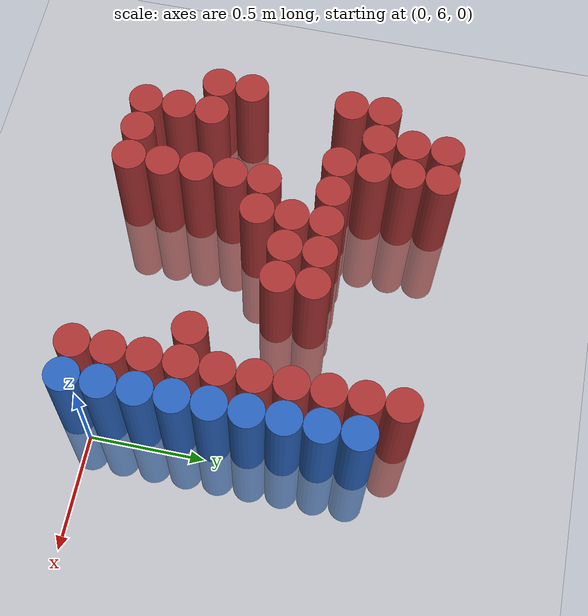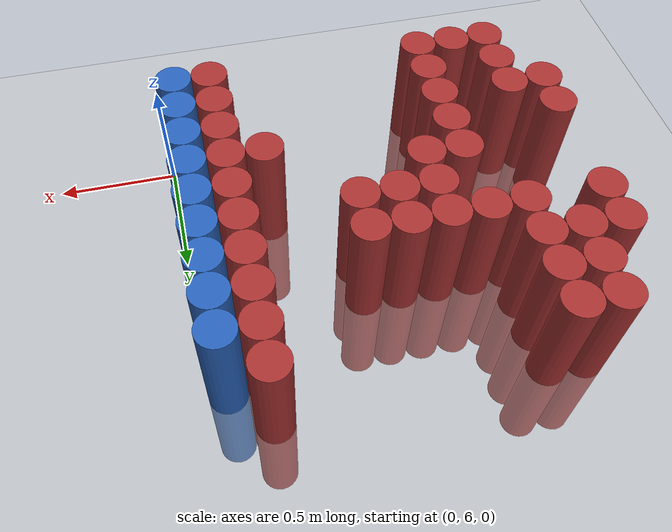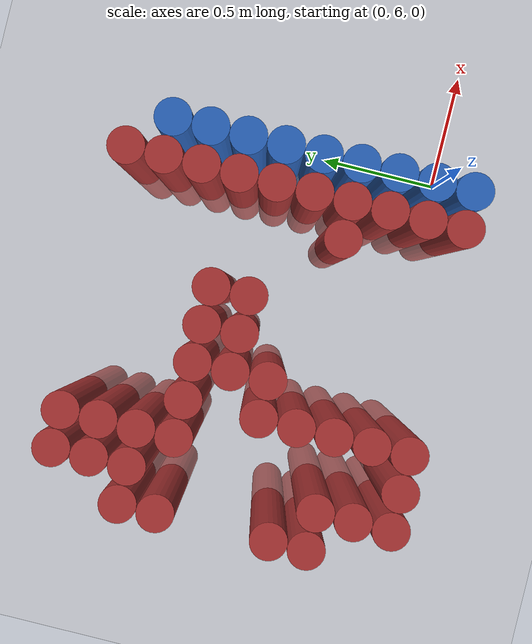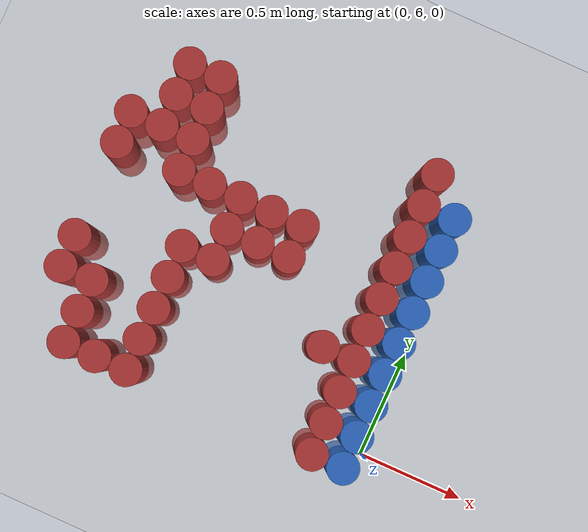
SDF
<sdf version="1.6">
 <world name="default">
  <model name="ground_plane">
   <static>1</static>
   <link name="link">
    <collision name="collision">
     <geometry><plane><normal>0 0 1</normal><size>100 100</size></plane></geometry>
     <surface><friction><ode><mu>100</mu><mu2>50</mu2></ode></friction></surface>
    </collision>
    <visual name="visual">
     <cast_shadows>0</cast_shadows>
     <geometry><plane><normal>0 0 1</normal><size>100 100</size></plane></geometry>
     <material>
      <script><uri>file://media/materials/scripts/gazebo.material</uri><name>Gazebo/Grey</name></script>
     </material>
    </visual>
   </link>
  </model>
  <model name="unit_cylinder_220">
   <static>1</static>
   <pose>-1.575000 6.225000 0.000000 0.000000 0.000000 0.000000</pose>
   <link name="link">
    <inertial>
     <mass>1</mass>
     <inertia><ixx>0.145833</ixx><ixy>0</ixy><ixz>0</ixz><iyy>0.145833</iyy><iyz>0</iyz><izz>0.125</izz></inertia>
    </inertial>
    <collision name="collision">
     <geometry><cylinder><radius>0.075000</radius><length>1</length></cylinder></geometry>
    </collision>
    <visual name="visual">
     <geometry><cylinder><radius>0.075000</radius><length>1</length></cylinder></geometry>
     <material>
      <ambient>0.648000 0.192000 0.192000 1</ambient>
      <diffuse>0.648000 0.192000 0.192000 1</diffuse>
     </material>
     <material>
      <script><name>Gazebo/Grey</name><uri>file://media/materials/scripts/gazebo.material</uri></script>
     </material>
    </visual>
   </link>
  </model>
  <model name="unit_cylinder_221">
   <static>1</static>
   <pose>-1.575000 6.375000 0.000000 0.000000 0.000000 0.000000</pose>
   <link name="link">
    <inertial>
     <mass>1</mass>
     <inertia><ixx>0.145833</ixx><ixy>0</ixy><ixz>0</ixz><iyy>0.145833</iyy><iyz>0</iyz><izz>0.125</izz></inertia>
    </inertial>
    <collision name="collision">
     <geometry><cylinder><radius>0.075000</radius><length>1</length></cylinder></geometry>
    </collision>
    <visual name="visual">
     <geometry><cylinder><radius>0.075000</radius><length>1</length></cylinder></geometry>
     <material>
      <ambient>0.648000 0.192000 0.192000 1</ambient>
      <diffuse>0.648000 0.192000 0.192000 1</diffuse>
     </material>
     <material>
      <script><name>Gazebo/Grey</name><uri>file://media/materials/scripts/gazebo.material</uri></script>
     </material>
    </visual>
   </link>
  </model>
  <model name="unit_cylinder_222">
   <static>1</static>
   <pose>-1.575000 6.825000 0.000000 0.000000 0.000000 0.000000</pose>
   <link name="link">
    <inertial>
     <mass>1</mass>
     <inertia><ixx>0.145833</ixx><ixy>0</ixy><ixz>0</ixz><iyy>0.145833</iyy><iyz>0</iyz><izz>0.125</izz></inertia>
    </inertial>
    <collision name="collision">
     <geometry><cylinder><radius>0.075000</radius><length>1</length></cylinder></geometry>
    </collision>
    <visual name="visual">
     <geometry><cylinder><radius>0.075000</radius><length>1</length></cylinder></geometry>
     <material>
      <ambient>0.648000 0.192000 0.192000 1</ambient>
      <diffuse>0.648000 0.192000 0.192000 1</diffuse>
     </material>
     <material>
      <script><name>Gazebo/Grey</name><uri>file://media/materials/scripts/gazebo.material</uri></script>
     </material>
    </visual>
   </link>
  </model>
  <model name="unit_cylinder_223">
   <static>1</static>
   <pose>-1.575000 6.975000 0.000000 0.000000 0.000000 0.000000</pose>
   <link name="link">
    <inertial>
     <mass>1</mass>
     <inertia><ixx>0.145833</ixx><ixy>0</ixy><ixz>0</ixz><iyy>0.145833</iyy><iyz>0</iyz><izz>0.125</izz></inertia>
    </inertial>
    <collision name="collision">
     <geometry><cylinder><radius>0.075000</radius><length>1</length></cylinder></geometry>
    </collision>
    <visual name="visual">
     <geometry><cylinder><radius>0.075000</radius><length>1</length></cylinder></geometry>
     <material>
      <ambient>0.648000 0.192000 0.192000 1</ambient>
      <diffuse>0.648000 0.192000 0.192000 1</diffuse>
     </material>
     <material>
      <script><name>Gazebo/Grey</name><uri>file://media/materials/scripts/gazebo.material</uri></script>
     </material>
    </visual>
   </link>
  </model>
  <model name="unit_cylinder_228">
   <static>1</static>
   <pose>-1.425000 5.925000 0.000000 0.000000 0.000000 0.000000</pose>
   <link name="link">
    <inertial>
     <mass>1</mass>
     <inertia><ixx>0.145833</ixx><ixy>0</ixy><ixz>0</ixz><iyy>0.145833</iyy><iyz>0</iyz><izz>0.125</izz></inertia>
    </inertial>
    <collision name="collision">
     <geometry><cylinder><radius>0.075000</radius><length>1</length></cylinder></geometry>
    </collision>
    <visual name="visual">
     <geometry><cylinder><radius>0.075000</radius><length>1</length></cylinder></geometry>
     <material>
      <ambient>0.648000 0.192000 0.192000 1</ambient>
      <diffuse>0.648000 0.192000 0.192000 1</diffuse>
     </material>
     <material>
      <script><name>Gazebo/Grey</name><uri>file://media/materials/scripts/gazebo.material</uri></script>
     </material>
    </visual>
   </link>
  </model>
  <model name="unit_cylinder_229">
   <static>1</static>
   <pose>-1.425000 6.075000 0.000000 0.000000 0.000000 0.000000</pose>
   <link name="link">
    <inertial>
     <mass>1</mass>
     <inertia><ixx>0.145833</ixx><ixy>0</ixy><ixz>0</ixz><iyy>0.145833</iyy><iyz>0</iyz><izz>0.125</izz></inertia>
    </inertial>
    <collision name="collision">
     <geometry><cylinder><radius>0.075000</radius><length>1</length></cylinder></geometry>
    </collision>
    <visual name="visual">
     <geometry><cylinder><radius>0.075000</radius><length>1</length></cylinder></geometry>
     <material>
      <ambient>0.648000 0.192000 0.192000 1</ambient>
      <diffuse>0.648000 0.192000 0.192000 1</diffuse>
     </material>
     <material>
      <script><name>Gazebo/Grey</name><uri>file://media/materials/scripts/gazebo.material</uri></script>
     </material>
    </visual>
   </link>
  </model>
  <model name="unit_cylinder_230">
   <static>1</static>
   <pose>-1.425000 6.225000 0.000000 0.000000 0.000000 0.000000</pose>
   <link name="link">
    <inertial>
     <mass>1</mass>
     <inertia><ixx>0.145833</ixx><ixy>0</ixy><ixz>0</ixz><iyy>0.145833</iyy><iyz>0</iyz><izz>0.125</izz></inertia>
    </inertial>
    <collision name="collision">
     <geometry><cylinder><radius>0.075000</radius><length>1</length></cylinder></geometry>
    </collision>
    <visual name="visual">
     <geometry><cylinder><radius>0.075000</radius><length>1</length></cylinder></geometry>
     <material>
      <ambient>0.648000 0.192000 0.192000 1</ambient>
      <diffuse>0.648000 0.192000 0.192000 1</diffuse>
     </material>
     <material>
      <script><name>Gazebo/Grey</name><uri>file://media/materials/scripts/gazebo.material</uri></script>
     </material>
    </visual>
   </link>
  </model>
  <model name="unit_cylinder_231">
   <static>1</static>
   <pose>-1.425000 6.975000 0.000000 0.000000 0.000000 0.000000</pose>
   <link name="link">
    <inertial>
     <mass>1</mass>
     <inertia><ixx>0.145833</ixx><ixy>0</ixy><ixz>0</ixz><iyy>0.145833</iyy><iyz>0</iyz><izz>0.125</izz></inertia>
    </inertial>
    <collision name="collision">
     <geometry><cylinder><radius>0.075000</radius><length>1</length></cylinder></geometry>
    </collision>
    <visual name="visual">
     <geometry><cylinder><radius>0.075000</radius><length>1</length></cylinder></geometry>
     <material>
      <ambient>0.648000 0.192000 0.192000 1</ambient>
      <diffuse>0.648000 0.192000 0.192000 1</diffuse>
     </material>
     <material>
      <script><name>Gazebo/Grey</name><uri>file://media/materials/scripts/gazebo.material</uri></script>
     </material>
    </visual>
   </link>
  </model>
  <model name="unit_cylinder_232">
   <static>1</static>
   <pose>-1.425000 7.125000 0.000000 0.000000 0.000000 0.000000</pose>
   <link name="link">
    <inertial>
     <mass>1</mass>
     <inertia><ixx>0.145833</ixx><ixy>0</ixy><ixz>0</ixz><iyy>0.145833</iyy><iyz>0</iyz><izz>0.125</izz></inertia>
    </inertial>
    <collision name="collision">
     <geometry><cylinder><radius>0.075000</radius><length>1</length></cylinder></geometry>
    </collision>
    <visual name="visual">
     <geometry><cylinder><radius>0.075000</radius><length>1</length></cylinder></geometry>
     <material>
      <ambient>0.648000 0.192000 0.192000 1</ambient>
      <diffuse>0.648000 0.192000 0.192000 1</diffuse>
     </material>
     <material>
      <script><name>Gazebo/Grey</name><uri>file://media/materials/scripts/gazebo.material</uri></script>
     </material>
    </visual>
   </link>
  </model>
  <model name="unit_cylinder_233">
   <static>1</static>
   <pose>-1.425000 7.275000 0.000000 0.000000 0.000000 0.000000</pose>
   <link name="link">
    <inertial>
     <mass>1</mass>
     <inertia><ixx>0.145833</ixx><ixy>0</ixy><ixz>0</ixz><iyy>0.145833</iyy><iyz>0</iyz><izz>0.125</izz></inertia>
    </inertial>
    <collision name="collision">
     <geometry><cylinder><radius>0.075000</radius><length>1</length></cylinder></geometry>
    </collision>
    <visual name="visual">
     <geometry><cylinder><radius>0.075000</radius><length>1</length></cylinder></geometry>
     <material>
      <ambient>0.648000 0.192000 0.192000 1</ambient>
      <diffuse>0.648000 0.192000 0.192000 1</diffuse>
     </material>
     <material>
      <script><name>Gazebo/Grey</name><uri>file://media/materials/scripts/gazebo.material</uri></script>
     </material>
    </visual>
   </link>
  </model>
  <model name="unit_cylinder_237">
   <static>1</static>
   <pose>-1.275000 5.925000 0.000000 0.000000 0.000000 0.000000</pose>
   <link name="link">
    <inertial>
     <mass>1</mass>
     <inertia><ixx>0.145833</ixx><ixy>0</ixy><ixz>0</ixz><iyy>0.145833</iyy><iyz>0</iyz><izz>0.125</izz></inertia>
    </inertial>
    <collision name="collision">
     <geometry><cylinder><radius>0.075000</radius><length>1</length></cylinder></geometry>
    </collision>
    <visual name="visual">
     <geometry><cylinder><radius>0.075000</radius><length>1</length></cylinder></geometry>
     <material>
      <ambient>0.648000 0.192000 0.192000 1</ambient>
      <diffuse>0.648000 0.192000 0.192000 1</diffuse>
     </material>
     <material>
      <script><name>Gazebo/Grey</name><uri>file://media/materials/scripts/gazebo.material</uri></script>
     </material>
    </visual>
   </link>
  </model>
  <model name="unit_cylinder_238">
   <static>1</static>
   <pose>-1.275000 6.825000 0.000000 0.000000 0.000000 0.000000</pose>
   <link name="link">
    <inertial>
     <mass>1</mass>
     <inertia><ixx>0.145833</ixx><ixy>0</ixy><ixz>0</ixz><iyy>0.145833</iyy><iyz>0</iyz><izz>0.125</izz></inertia>
    </inertial>
    <collision name="collision">
     <geometry><cylinder><radius>0.075000</radius><length>1</length></cylinder></geometry>
    </collision>
    <visual name="visual">
     <geometry><cylinder><radius>0.075000</radius><length>1</length></cylinder></geometry>
     <material>
      <ambient>0.648000 0.192000 0.192000 1</ambient>
      <diffuse>0.648000 0.192000 0.192000 1</diffuse>
     </material>
     <material>
      <script><name>Gazebo/Grey</name><uri>file://media/materials/scripts/gazebo.material</uri></script>
     </material>
    </visual>
   </link>
  </model>
  <model name="unit_cylinder_239">
   <static>1</static>
   <pose>-1.275000 6.975000 0.000000 0.000000 0.000000 0.000000</pose>
   <link name="link">
    <inertial>
     <mass>1</mass>
     <inertia><ixx>0.145833</ixx><ixy>0</ixy><ixz>0</ixz><iyy>0.145833</iyy><iyz>0</iyz><izz>0.125</izz></inertia>
    </inertial>
    <collision name="collision">
     <geometry><cylinder><radius>0.075000</radius><length>1</length></cylinder></geometry>
    </collision>
    <visual name="visual">
     <geometry><cylinder><radius>0.075000</radius><length>1</length></cylinder></geometry>
     <material>
      <ambient>0.648000 0.192000 0.192000 1</ambient>
      <diffuse>0.648000 0.192000 0.192000 1</diffuse>
     </material>
     <material>
      <script><name>Gazebo/Grey</name><uri>file://media/materials/scripts/gazebo.material</uri></script>
     </material>
    </visual>
   </link>
  </model>
  <model name="unit_cylinder_240">
   <static>1</static>
   <pose>-1.275000 7.125000 0.000000 0.000000 0.000000 0.000000</pose>
   <link name="link">
    <inertial>
     <mass>1</mass>
     <inertia><ixx>0.145833</ixx><ixy>0</ixy><ixz>0</ixz><iyy>0.145833</iyy><iyz>0</iyz><izz>0.125</izz></inertia>
    </inertial>
    <collision name="collision">
     <geometry><cylinder><radius>0.075000</radius><length>1</length></cylinder></geometry>
    </collision>
    <visual name="visual">
     <geometry><cylinder><radius>0.075000</radius><length>1</length></cylinder></geometry>
     <material>
      <ambient>0.648000 0.192000 0.192000 1</ambient>
      <diffuse>0.648000 0.192000 0.192000 1</diffuse>
     </material>
     <material>
      <script><name>Gazebo/Grey</name><uri>file://media/materials/scripts/gazebo.material</uri></script>
     </material>
    </visual>
   </link>
  </model>
  <model name="unit_cylinder_241">
   <static>1</static>
   <pose>-1.275000 7.275000 0.000000 0.000000 0.000000 0.000000</pose>
   <link name="link">
    <inertial>
     <mass>1</mass>
     <inertia><ixx>0.145833</ixx><ixy>0</ixy><ixz>0</ixz><iyy>0.145833</iyy><iyz>0</iyz><izz>0.125</izz></inertia>
    </inertial>
    <collision name="collision">
     <geometry><cylinder><radius>0.075000</radius><length>1</length></cylinder></geometry>
    </collision>
    <visual name="visual">
     <geometry><cylinder><radius>0.075000</radius><length>1</length></cylinder></geometry>
     <material>
      <ambient>0.648000 0.192000 0.192000 1</ambient>
      <diffuse>0.648000 0.192000 0.192000 1</diffuse>
     </material>
     <material>
      <script><name>Gazebo/Grey</name><uri>file://media/materials/scripts/gazebo.material</uri></script>
     </material>
    </visual>
   </link>
  </model>
  <model name="unit_cylinder_244">
   <static>1</static>
   <pose>-1.125000 5.925000 0.000000 0.000000 0.000000 0.000000</pose>
   <link name="link">
    <inertial>
     <mass>1</mass>
     <inertia><ixx>0.145833</ixx><ixy>0</ixy><ixz>0</ixz><iyy>0.145833</iyy><iyz>0</iyz><izz>0.125</izz></inertia>
    </inertial>
    <collision name="collision">
     <geometry><cylinder><radius>0.075000</radius><length>1</length></cylinder></geometry>
    </collision>
    <visual name="visual">
     <geometry><cylinder><radius>0.075000</radius><length>1</length></cylinder></geometry>
     <material>
      <ambient>0.648000 0.192000 0.192000 1</ambient>
      <diffuse>0.648000 0.192000 0.192000 1</diffuse>
     </material>
     <material>
      <script><name>Gazebo/Grey</name><uri>file://media/materials/scripts/gazebo.material</uri></script>
     </material>
    </visual>
   </link>
  </model>
  <model name="unit_cylinder_245">
   <static>1</static>
   <pose>-1.125000 6.075000 0.000000 0.000000 0.000000 0.000000</pose>
   <link name="link">
    <inertial>
     <mass>1</mass>
     <inertia><ixx>0.145833</ixx><ixy>0</ixy><ixz>0</ixz><iyy>0.145833</iyy><iyz>0</iyz><izz>0.125</izz></inertia>
    </inertial>
    <collision name="collision">
     <geometry><cylinder><radius>0.075000</radius><length>1</length></cylinder></geometry>
    </collision>
    <visual name="visual">
     <geometry><cylinder><radius>0.075000</radius><length>1</length></cylinder></geometry>
     <material>
      <ambient>0.648000 0.192000 0.192000 1</ambient>
      <diffuse>0.648000 0.192000 0.192000 1</diffuse>
     </material>
     <material>
      <script><name>Gazebo/Grey</name><uri>file://media/materials/scripts/gazebo.material</uri></script>
     </material>
    </visual>
   </link>
  </model>
  <model name="unit_cylinder_246">
   <static>1</static>
   <pose>-1.125000 6.225000 0.000000 0.000000 0.000000 0.000000</pose>
   <link name="link">
    <inertial>
     <mass>1</mass>
     <inertia><ixx>0.145833</ixx><ixy>0</ixy><ixz>0</ixz><iyy>0.145833</iyy><iyz>0</iyz><izz>0.125</izz></inertia>
    </inertial>
    <collision name="collision">
     <geometry><cylinder><radius>0.075000</radius><length>1</length></cylinder></geometry>
    </collision>
    <visual name="visual">
     <geometry><cylinder><radius>0.075000</radius><length>1</length></cylinder></geometry>
     <material>
      <ambient>0.648000 0.192000 0.192000 1</ambient>
      <diffuse>0.648000 0.192000 0.192000 1</diffuse>
     </material>
     <material>
      <script><name>Gazebo/Grey</name><uri>file://media/materials/scripts/gazebo.material</uri></script>
     </material>
    </visual>
   </link>
  </model>
  <model name="unit_cylinder_247">
   <static>1</static>
   <pose>-1.125000 6.375000 0.000000 0.000000 0.000000 0.000000</pose>
   <link name="link">
    <inertial>
     <mass>1</mass>
     <inertia><ixx>0.145833</ixx><ixy>0</ixy><ixz>0</ixz><iyy>0.145833</iyy><iyz>0</iyz><izz>0.125</izz></inertia>
    </inertial>
    <collision name="collision">
     <geometry><cylinder><radius>0.075000</radius><length>1</length></cylinder></geometry>
    </collision>
    <visual name="visual">
     <geometry><cylinder><radius>0.075000</radius><length>1</length></cylinder></geometry>
     <material>
      <ambient>0.648000 0.192000 0.192000 1</ambient>
      <diffuse>0.648000 0.192000 0.192000 1</diffuse>
     </material>
     <material>
      <script><name>Gazebo/Grey</name><uri>file://media/materials/scripts/gazebo.material</uri></script>
     </material>
    </visual>
   </link>
  </model>
  <model name="unit_cylinder_248">
   <static>1</static>
   <pose>-1.125000 6.525000 0.000000 0.000000 0.000000 0.000000</pose>
   <link name="link">
    <inertial>
     <mass>1</mass>
     <inertia><ixx>0.145833</ixx><ixy>0</ixy><ixz>0</ixz><iyy>0.145833</iyy><iyz>0</iyz><izz>0.125</izz></inertia>
    </inertial>
    <collision name="collision">
     <geometry><cylinder><radius>0.075000</radius><length>1</length></cylinder></geometry>
    </collision>
    <visual name="visual">
     <geometry><cylinder><radius>0.075000</radius><length>1</length></cylinder></geometry>
     <material>
      <ambient>0.648000 0.192000 0.192000 1</ambient>
      <diffuse>0.648000 0.192000 0.192000 1</diffuse>
     </material>
     <material>
      <script><name>Gazebo/Grey</name><uri>file://media/materials/scripts/gazebo.material</uri></script>
     </material>
    </visual>
   </link>
  </model>
  <model name="unit_cylinder_249">
   <static>1</static>
   <pose>-1.125000 6.825000 0.000000 0.000000 0.000000 0.000000</pose>
   <link name="link">
    <inertial>
     <mass>1</mass>
     <inertia><ixx>0.145833</ixx><ixy>0</ixy><ixz>0</ixz><iyy>0.145833</iyy><iyz>0</iyz><izz>0.125</izz></inertia>
    </inertial>
    <collision name="collision">
     <geometry><cylinder><radius>0.075000</radius><length>1</length></cylinder></geometry>
    </collision>
    <visual name="visual">
     <geometry><cylinder><radius>0.075000</radius><length>1</length></cylinder></geometry>
     <material>
      <ambient>0.648000 0.192000 0.192000 1</ambient>
      <diffuse>0.648000 0.192000 0.192000 1</diffuse>
     </material>
     <material>
      <script><name>Gazebo/Grey</name><uri>file://media/materials/scripts/gazebo.material</uri></script>
     </material>
    </visual>
   </link>
  </model>
  <model name="unit_cylinder_254">
   <static>1</static>
   <pose>-0.975000 6.525000 0.000000 0.000000 0.000000 0.000000</pose>
   <link name="link">
    <inertial>
     <mass>1</mass>
     <inertia><ixx>0.145833</ixx><ixy>0</ixy><ixz>0</ixz><iyy>0.145833</iyy><iyz>0</iyz><izz>0.125</izz></inertia>
    </inertial>
    <collision name="collision">
     <geometry><cylinder><radius>0.075000</radius><length>1</length></cylinder></geometry>
    </collision>
    <visual name="visual">
     <geometry><cylinder><radius>0.075000</radius><length>1</length></cylinder></geometry>
     <material>
      <ambient>0.648000 0.192000 0.192000 1</ambient>
      <diffuse>0.648000 0.192000 0.192000 1</diffuse>
     </material>
     <material>
      <script><name>Gazebo/Grey</name><uri>file://media/materials/scripts/gazebo.material</uri></script>
     </material>
    </visual>
   </link>
  </model>
  <model name="unit_cylinder_255">
   <static>1</static>
   <pose>-0.975000 6.675000 0.000000 0.000000 0.000000 0.000000</pose>
   <link name="link">
    <inertial>
     <mass>1</mass>
     <inertia><ixx>0.145833</ixx><ixy>0</ixy><ixz>0</ixz><iyy>0.145833</iyy><iyz>0</iyz><izz>0.125</izz></inertia>
    </inertial>
    <collision name="collision">
     <geometry><cylinder><radius>0.075000</radius><length>1</length></cylinder></geometry>
    </collision>
    <visual name="visual">
     <geometry><cylinder><radius>0.075000</radius><length>1</length></cylinder></geometry>
     <material>
      <ambient>0.648000 0.192000 0.192000 1</ambient>
      <diffuse>0.648000 0.192000 0.192000 1</diffuse>
     </material>
     <material>
      <script><name>Gazebo/Grey</name><uri>file://media/materials/scripts/gazebo.material</uri></script>
     </material>
    </visual>
   </link>
  </model>
  <model name="unit_cylinder_256">
   <static>1</static>
   <pose>-0.975000 6.825000 0.000000 0.000000 0.000000 0.000000</pose>
   <link name="link">
    <inertial>
     <mass>1</mass>
     <inertia><ixx>0.145833</ixx><ixy>0</ixy><ixz>0</ixz><iyy>0.145833</iyy><iyz>0</iyz><izz>0.125</izz></inertia>
    </inertial>
    <collision name="collision">
     <geometry><cylinder><radius>0.075000</radius><length>1</length></cylinder></geometry>
    </collision>
    <visual name="visual">
     <geometry><cylinder><radius>0.075000</radius><length>1</length></cylinder></geometry>
     <material>
      <ambient>0.648000 0.192000 0.192000 1</ambient>
      <diffuse>0.648000 0.192000 0.192000 1</diffuse>
     </material>
     <material>
      <script><name>Gazebo/Grey</name><uri>file://media/materials/scripts/gazebo.material</uri></script>
     </material>
    </visual>
   </link>
  </model>
  <model name="unit_cylinder_262">
   <static>1</static>
   <pose>-0.825000 6.675000 0.000000 0.000000 0.000000 0.000000</pose>
   <link name="link">
    <inertial>
     <mass>1</mass>
     <inertia><ixx>0.145833</ixx><ixy>0</ixy><ixz>0</ixz><iyy>0.145833</iyy><iyz>0</iyz><izz>0.125</izz></inertia>
    </inertial>
    <collision name="collision">
     <geometry><cylinder><radius>0.075000</radius><length>1</length></cylinder></geometry>
    </collision>
    <visual name="visual">
     <geometry><cylinder><radius>0.075000</radius><length>1</length></cylinder></geometry>
     <material>
      <ambient>0.648000 0.192000 0.192000 1</ambient>
      <diffuse>0.648000 0.192000 0.192000 1</diffuse>
     </material>
     <material>
      <script><name>Gazebo/Grey</name><uri>file://media/materials/scripts/gazebo.material</uri></script>
     </material>
    </visual>
   </link>
  </model>
  <model name="unit_cylinder_263">
   <static>1</static>
   <pose>-0.825000 6.825000 0.000000 0.000000 0.000000 0.000000</pose>
   <link name="link">
    <inertial>
     <mass>1</mass>
     <inertia><ixx>0.145833</ixx><ixy>0</ixy><ixz>0</ixz><iyy>0.145833</iyy><iyz>0</iyz><izz>0.125</izz></inertia>
    </inertial>
    <collision name="collision">
     <geometry><cylinder><radius>0.075000</radius><length>1</length></cylinder></geometry>
    </collision>
    <visual name="visual">
     <geometry><cylinder><radius>0.075000</radius><length>1</length></cylinder></geometry>
     <material>
      <ambient>0.648000 0.192000 0.192000 1</ambient>
      <diffuse>0.648000 0.192000 0.192000 1</diffuse>
     </material>
     <material>
      <script><name>Gazebo/Grey</name><uri>file://media/materials/scripts/gazebo.material</uri></script>
     </material>
    </visual>
   </link>
  </model>
  <model name="unit_cylinder_266">
   <static>1</static>
   <pose>-0.675000 6.675000 0.000000 0.000000 0.000000 0.000000</pose>
   <link name="link">
    <inertial>
     <mass>1</mass>
     <inertia><ixx>0.145833</ixx><ixy>0</ixy><ixz>0</ixz><iyy>0.145833</iyy><iyz>0</iyz><izz>0.125</izz></inertia>
    </inertial>
    <collision name="collision">
     <geometry><cylinder><radius>0.075000</radius><length>1</length></cylinder></geometry>
    </collision>
    <visual name="visual">
     <geometry><cylinder><radius>0.075000</radius><length>1</length></cylinder></geometry>
     <material>
      <ambient>0.648000 0.192000 0.192000 1</ambient>
      <diffuse>0.648000 0.192000 0.192000 1</diffuse>
     </material>
     <material>
      <script><name>Gazebo/Grey</name><uri>file://media/materials/scripts/gazebo.material</uri></script>
     </material>
    </visual>
   </link>
  </model>
  <model name="unit_cylinder_267">
   <static>1</static>
   <pose>-0.675000 6.825000 0.000000 0.000000 0.000000 0.000000</pose>
   <link name="link">
    <inertial>
     <mass>1</mass>
     <inertia><ixx>0.145833</ixx><ixy>0</ixy><ixz>0</ixz><iyy>0.145833</iyy><iyz>0</iyz><izz>0.125</izz></inertia>
    </inertial>
    <collision name="collision">
     <geometry><cylinder><radius>0.075000</radius><length>1</length></cylinder></geometry>
    </collision>
    <visual name="visual">
     <geometry><cylinder><radius>0.075000</radius><length>1</length></cylinder></geometry>
     <material>
      <ambient>0.648000 0.192000 0.192000 1</ambient>
      <diffuse>0.648000 0.192000 0.192000 1</diffuse>
     </material>
     <material>
      <script><name>Gazebo/Grey</name><uri>file://media/materials/scripts/gazebo.material</uri></script>
     </material>
    </visual>
   </link>
  </model>
  <model name="unit_cylinder_278">
   <static>1</static>
   <pose>-0.375000 6.375000 0.000000 0.000000 0.000000 0.000000</pose>
   <link name="link">
    <inertial>
     <mass>1</mass>
     <inertia><ixx>0.145833</ixx><ixy>0</ixy><ixz>0</ixz><iyy>0.145833</iyy><iyz>0</iyz><izz>0.125</izz></inertia>
    </inertial>
    <collision name="collision">
     <geometry><cylinder><radius>0.075000</radius><length>1</length></cylinder></geometry>
    </collision>
    <visual name="visual">
     <geometry><cylinder><radius>0.075000</radius><length>1</length></cylinder></geometry>
     <material>
      <ambient>0.648000 0.192000 0.192000 1</ambient>
      <diffuse>0.648000 0.192000 0.192000 1</diffuse>
     </material>
     <material>
      <script><name>Gazebo/Grey</name><uri>file://media/materials/scripts/gazebo.material</uri></script>
     </material>
    </visual>
   </link>
  </model>
  <model name="unit_cylinder_287">
   <static>1</static>
   <pose>-0.225000 5.925000 0.000000 0.000000 0.000000 0.000000</pose>
   <link name="link">
    <inertial>
     <mass>1</mass>
     <inertia><ixx>0.145833</ixx><ixy>0</ixy><ixz>0</ixz><iyy>0.145833</iyy><iyz>0</iyz><izz>0.125</izz></inertia>
    </inertial>
    <collision name="collision">
     <geometry><cylinder><radius>0.075000</radius><length>1</length></cylinder></geometry>
    </collision>
    <visual name="visual">
     <geometry><cylinder><radius>0.075000</radius><length>1</length></cylinder></geometry>
     <material>
      <ambient>0.648000 0.192000 0.192000 1</ambient>
      <diffuse>0.648000 0.192000 0.192000 1</diffuse>
     </material>
     <material>
      <script><name>Gazebo/Grey</name><uri>file://media/materials/scripts/gazebo.material</uri></script>
     </material>
    </visual>
   </link>
  </model>
  <model name="unit_cylinder_288">
   <static>1</static>
   <pose>-0.225000 6.075000 0.000000 0.000000 0.000000 0.000000</pose>
   <link name="link">
    <inertial>
     <mass>1</mass>
     <inertia><ixx>0.145833</ixx><ixy>0</ixy><ixz>0</ixz><iyy>0.145833</iyy><iyz>0</iyz><izz>0.125</izz></inertia>
    </inertial>
    <collision name="collision">
     <geometry><cylinder><radius>0.075000</radius><length>1</length></cylinder></geometry>
    </collision>
    <visual name="visual">
     <geometry><cylinder><radius>0.075000</radius><length>1</length></cylinder></geometry>
     <material>
      <ambient>0.648000 0.192000 0.192000 1</ambient>
      <diffuse>0.648000 0.192000 0.192000 1</diffuse>
     </material>
     <material>
      <script><name>Gazebo/Grey</name><uri>file://media/materials/scripts/gazebo.material</uri></script>
     </material>
    </visual>
   </link>
  </model>
  <model name="unit_cylinder_289">
   <static>1</static>
   <pose>-0.225000 6.225000 0.000000 0.000000 0.000000 0.000000</pose>
   <link name="link">
    <inertial>
     <mass>1</mass>
     <inertia><ixx>0.145833</ixx><ixy>0</ixy><ixz>0</ixz><iyy>0.145833</iyy><iyz>0</iyz><izz>0.125</izz></inertia>
    </inertial>
    <collision name="collision">
     <geometry><cylinder><radius>0.075000</radius><length>1</length></cylinder></geometry>
    </collision>
    <visual name="visual">
     <geometry><cylinder><radius>0.075000</radius><length>1</length></cylinder></geometry>
     <material>
      <ambient>0.648000 0.192000 0.192000 1</ambient>
      <diffuse>0.648000 0.192000 0.192000 1</diffuse>
     </material>
     <material>
      <script><name>Gazebo/Grey</name><uri>file://media/materials/scripts/gazebo.material</uri></script>
     </material>
    </visual>
   </link>
  </model>
  <model name="unit_cylinder_290">
   <static>1</static>
   <pose>-0.225000 6.375000 0.000000 0.000000 0.000000 0.000000</pose>
   <link name="link">
    <inertial>
     <mass>1</mass>
     <inertia><ixx>0.145833</ixx><ixy>0</ixy><ixz>0</ixz><iyy>0.145833</iyy><iyz>0</iyz><izz>0.125</izz></inertia>
    </inertial>
    <collision name="collision">
     <geometry><cylinder><radius>0.075000</radius><length>1</length></cylinder></geometry>
    </collision>
    <visual name="visual">
     <geometry><cylinder><radius>0.075000</radius><length>1</length></cylinder></geometry>
     <material>
      <ambient>0.648000 0.192000 0.192000 1</ambient>
      <diffuse>0.648000 0.192000 0.192000 1</diffuse>
     </material>
     <material>
      <script><name>Gazebo/Grey</name><uri>file://media/materials/scripts/gazebo.material</uri></script>
     </material>
    </visual>
   </link>
  </model>
  <model name="unit_cylinder_291">
   <static>1</static>
   <pose>-0.225000 6.525000 0.000000 0.000000 0.000000 0.000000</pose>
   <link name="link">
    <inertial>
     <mass>1</mass>
     <inertia><ixx>0.145833</ixx><ixy>0</ixy><ixz>0</ixz><iyy>0.145833</iyy><iyz>0</iyz><izz>0.125</izz></inertia>
    </inertial>
    <collision name="collision">
     <geometry><cylinder><radius>0.075000</radius><length>1</length></cylinder></geometry>
    </collision>
    <visual name="visual">
     <geometry><cylinder><radius>0.075000</radius><length>1</length></cylinder></geometry>
     <material>
      <ambient>0.648000 0.192000 0.192000 1</ambient>
      <diffuse>0.648000 0.192000 0.192000 1</diffuse>
     </material>
     <material>
      <script><name>Gazebo/Grey</name><uri>file://media/materials/scripts/gazebo.material</uri></script>
     </material>
    </visual>
   </link>
  </model>
  <model name="unit_cylinder_292">
   <static>1</static>
   <pose>-0.225000 6.675000 0.000000 0.000000 0.000000 0.000000</pose>
   <link name="link">
    <inertial>
     <mass>1</mass>
     <inertia><ixx>0.145833</ixx><ixy>0</ixy><ixz>0</ixz><iyy>0.145833</iyy><iyz>0</iyz><izz>0.125</izz></inertia>
    </inertial>
    <collision name="collision">
     <geometry><cylinder><radius>0.075000</radius><length>1</length></cylinder></geometry>
    </collision>
    <visual name="visual">
     <geometry><cylinder><radius>0.075000</radius><length>1</length></cylinder></geometry>
     <material>
      <ambient>0.648000 0.192000 0.192000 1</ambient>
      <diffuse>0.648000 0.192000 0.192000 1</diffuse>
     </material>
     <material>
      <script><name>Gazebo/Grey</name><uri>file://media/materials/scripts/gazebo.material</uri></script>
     </material>
    </visual>
   </link>
  </model>
  <model name="unit_cylinder_293">
   <static>1</static>
   <pose>-0.225000 6.825000 0.000000 0.000000 0.000000 0.000000</pose>
   <link name="link">
    <inertial>
     <mass>1</mass>
     <inertia><ixx>0.145833</ixx><ixy>0</ixy><ixz>0</ixz><iyy>0.145833</iyy><iyz>0</iyz><izz>0.125</izz></inertia>
    </inertial>
    <collision name="collision">
     <geometry><cylinder><radius>0.075000</radius><length>1</length></cylinder></geometry>
    </collision>
    <visual name="visual">
     <geometry><cylinder><radius>0.075000</radius><length>1</length></cylinder></geometry>
     <material>
      <ambient>0.648000 0.192000 0.192000 1</ambient>
      <diffuse>0.648000 0.192000 0.192000 1</diffuse>
     </material>
     <material>
      <script><name>Gazebo/Grey</name><uri>file://media/materials/scripts/gazebo.material</uri></script>
     </material>
    </visual>
   </link>
  </model>
  <model name="unit_cylinder_294">
   <static>1</static>
   <pose>-0.225000 6.975000 0.000000 0.000000 0.000000 0.000000</pose>
   <link name="link">
    <inertial>
     <mass>1</mass>
     <inertia><ixx>0.145833</ixx><ixy>0</ixy><ixz>0</ixz><iyy>0.145833</iyy><iyz>0</iyz><izz>0.125</izz></inertia>
    </inertial>
    <collision name="collision">
     <geometry><cylinder><radius>0.075000</radius><length>1</length></cylinder></geometry>
    </collision>
    <visual name="visual">
     <geometry><cylinder><radius>0.075000</radius><length>1</length></cylinder></geometry>
     <material>
      <ambient>0.648000 0.192000 0.192000 1</ambient>
      <diffuse>0.648000 0.192000 0.192000 1</diffuse>
     </material>
     <material>
      <script><name>Gazebo/Grey</name><uri>file://media/materials/scripts/gazebo.material</uri></script>
     </material>
    </visual>
   </link>
  </model>
  <model name="unit_cylinder_295">
   <static>1</static>
   <pose>-0.225000 7.125000 0.000000 0.000000 0.000000 0.000000</pose>
   <link name="link">
    <inertial>
     <mass>1</mass>
     <inertia><ixx>0.145833</ixx><ixy>0</ixy><ixz>0</ixz><iyy>0.145833</iyy><iyz>0</iyz><izz>0.125</izz></inertia>
    </inertial>
    <collision name="collision">
     <geometry><cylinder><radius>0.075000</radius><length>1</length></cylinder></geometry>
    </collision>
    <visual name="visual">
     <geometry><cylinder><radius>0.075000</radius><length>1</length></cylinder></geometry>
     <material>
      <ambient>0.648000 0.192000 0.192000 1</ambient>
      <diffuse>0.648000 0.192000 0.192000 1</diffuse>
     </material>
     <material>
      <script><name>Gazebo/Grey</name><uri>file://media/materials/scripts/gazebo.material</uri></script>
     </material>
    </visual>
   </link>
  </model>
  <model name="unit_cylinder_296">
   <static>1</static>
   <pose>-0.225000 7.275000 0.000000 0.000000 0.000000 0.000000</pose>
   <link name="link">
    <inertial>
     <mass>1</mass>
     <inertia><ixx>0.145833</ixx><ixy>0</ixy><ixz>0</ixz><iyy>0.145833</iyy><iyz>0</iyz><izz>0.125</izz></inertia>
    </inertial>
    <collision name="collision">
     <geometry><cylinder><radius>0.075000</radius><length>1</length></cylinder></geometry>
    </collision>
    <visual name="visual">
     <geometry><cylinder><radius>0.075000</radius><length>1</length></cylinder></geometry>
     <material>
      <ambient>0.648000 0.192000 0.192000 1</ambient>
      <diffuse>0.648000 0.192000 0.192000 1</diffuse>
     </material>
     <material>
      <script><name>Gazebo/Grey</name><uri>file://media/materials/scripts/gazebo.material</uri></script>
     </material>
    </visual>
   </link>
  </model>
  <model name="unit_cylinder_310">
   <static>1</static>
   <pose>-0.075000 5.925000 0.000000 0.000000 0.000000 0.000000</pose>
   <link name="link">
    <inertial>
     <mass>1</mass>
     <inertia><ixx>0.145833</ixx><ixy>0</ixy><ixz>0</ixz><iyy>0.145833</iyy><iyz>0</iyz><izz>0.125</izz></inertia>
    </inertial>
    <collision name="collision">
     <geometry><cylinder><radius>0.075000</radius><length>1</length></cylinder></geometry>
    </collision>
    <visual name="visual">
     <geometry><cylinder><radius>0.075000</radius><length>1</length></cylinder></geometry>
     <material>
      <ambient>0.152000 0.379000 0.720000 1</ambient>
      <diffuse>0.152000 0.379000 0.720000 1</diffuse>
     </material>
     <material>
      <script><name>Gazebo/Grey</name><uri>file://media/materials/scripts/gazebo.material</uri></script>
     </material>
    </visual>
   </link>
  </model>
  <model name="unit_cylinder_311">
   <static>1</static>
   <pose>-0.075000 6.075000 0.000000 0.000000 0.000000 0.000000</pose>
   <link name="link">
    <inertial>
     <mass>1</mass>
     <inertia><ixx>0.145833</ixx><ixy>0</ixy><ixz>0</ixz><iyy>0.145833</iyy><iyz>0</iyz><izz>0.125</izz></inertia>
    </inertial>
    <collision name="collision">
     <geometry><cylinder><radius>0.075000</radius><length>1</length></cylinder></geometry>
    </collision>
    <visual name="visual">
     <geometry><cylinder><radius>0.075000</radius><length>1</length></cylinder></geometry>
     <material>
      <ambient>0.152000 0.379000 0.720000 1</ambient>
      <diffuse>0.152000 0.379000 0.720000 1</diffuse>
     </material>
     <material>
      <script><name>Gazebo/Grey</name><uri>file://media/materials/scripts/gazebo.material</uri></script>
     </material>
    </visual>
   </link>
  </model>
  <model name="unit_cylinder_312">
   <static>1</static>
   <pose>-0.075000 6.225000 0.000000 0.000000 0.000000 0.000000</pose>
   <link name="link">
    <inertial>
     <mass>1</mass>
     <inertia><ixx>0.145833</ixx><ixy>0</ixy><ixz>0</ixz><iyy>0.145833</iyy><iyz>0</iyz><izz>0.125</izz></inertia>
    </inertial>
    <collision name="collision">
     <geometry><cylinder><radius>0.075000</radius><length>1</length></cylinder></geometry>
    </collision>
    <visual name="visual">
     <geometry><cylinder><radius>0.075000</radius><length>1</length></cylinder></geometry>
     <material>
      <ambient>0.152000 0.379000 0.720000 1</ambient>
      <diffuse>0.152000 0.379000 0.720000 1</diffuse>
     </material>
     <material>
      <script><name>Gazebo/Grey</name><uri>file://media/materials/scripts/gazebo.material</uri></script>
     </material>
    </visual>
   </link>
  </model>
  <model name="unit_cylinder_313">
   <static>1</static>
   <pose>-0.075000 6.375000 0.000000 0.000000 0.000000 0.000000</pose>
   <link name="link">
    <inertial>
     <mass>1</mass>
     <inertia><ixx>0.145833</ixx><ixy>0</ixy><ixz>0</ixz><iyy>0.145833</iyy><iyz>0</iyz><izz>0.125</izz></inertia>
    </inertial>
    <collision name="collision">
     <geometry><cylinder><radius>0.075000</radius><length>1</length></cylinder></geometry>
    </collision>
    <visual name="visual">
     <geometry><cylinder><radius>0.075000</radius><length>1</length></cylinder></geometry>
     <material>
      <ambient>0.152000 0.379000 0.720000 1</ambient>
      <diffuse>0.152000 0.379000 0.720000 1</diffuse>
     </material>
     <material>
      <script><name>Gazebo/Grey</name><uri>file://media/materials/scripts/gazebo.material</uri></script>
     </material>
    </visual>
   </link>
  </model>
  <model name="unit_cylinder_314">
   <static>1</static>
   <pose>-0.075000 6.525000 0.000000 0.000000 0.000000 0.000000</pose>
   <link name="link">
    <inertial>
     <mass>1</mass>
     <inertia><ixx>0.145833</ixx><ixy>0</ixy><ixz>0</ixz><iyy>0.145833</iyy><iyz>0</iyz><izz>0.125</izz></inertia>
    </inertial>
    <collision name="collision">
     <geometry><cylinder><radius>0.075000</radius><length>1</length></cylinder></geometry>
    </collision>
    <visual name="visual">
     <geometry><cylinder><radius>0.075000</radius><length>1</length></cylinder></geometry>
     <material>
      <ambient>0.152000 0.379000 0.720000 1</ambient>
      <diffuse>0.152000 0.379000 0.720000 1</diffuse>
     </material>
     <material>
      <script><name>Gazebo/Grey</name><uri>file://media/materials/scripts/gazebo.material</uri></script>
     </material>
    </visual>
   </link>
  </model>
  <model name="unit_cylinder_315">
   <static>1</static>
   <pose>-0.075000 6.675000 0.000000 0.000000 0.000000 0.000000</pose>
   <link name="link">
    <inertial>
     <mass>1</mass>
     <inertia><ixx>0.145833</ixx><ixy>0</ixy><ixz>0</ixz><iyy>0.145833</iyy><iyz>0</iyz><izz>0.125</izz></inertia>
    </inertial>
    <collision name="collision">
     <geometry><cylinder><radius>0.075000</radius><length>1</length></cylinder></geometry>
    </collision>
    <visual name="visual">
     <geometry><cylinder><radius>0.075000</radius><length>1</length></cylinder></geometry>
     <material>
      <ambient>0.152000 0.379000 0.720000 1</ambient>
      <diffuse>0.152000 0.379000 0.720000 1</diffuse>
     </material>
     <material>
      <script><name>Gazebo/Grey</name><uri>file://media/materials/scripts/gazebo.material</uri></script>
     </material>
    </visual>
   </link>
  </model>
  <model name="unit_cylinder_316">
   <static>1</static>
   <pose>-0.075000 6.825000 0.000000 0.000000 0.000000 0.000000</pose>
   <link name="link">
    <inertial>
     <mass>1</mass>
     <inertia><ixx>0.145833</ixx><ixy>0</ixy><ixz>0</ixz><iyy>0.145833</iyy><iyz>0</iyz><izz>0.125</izz></inertia>
    </inertial>
    <collision name="collision">
     <geometry><cylinder><radius>0.075000</radius><length>1</length></cylinder></geometry>
    </collision>
    <visual name="visual">
     <geometry><cylinder><radius>0.075000</radius><length>1</length></cylinder></geometry>
     <material>
      <ambient>0.152000 0.379000 0.720000 1</ambient>
      <diffuse>0.152000 0.379000 0.720000 1</diffuse>
     </material>
     <material>
      <script><name>Gazebo/Grey</name><uri>file://media/materials/scripts/gazebo.material</uri></script>
     </material>
    </visual>
   </link>
  </model>
  <model name="unit_cylinder_317">
   <static>1</static>
   <pose>-0.075000 6.975000 0.000000 0.000000 0.000000 0.000000</pose>
   <link name="link">
    <inertial>
     <mass>1</mass>
     <inertia><ixx>0.145833</ixx><ixy>0</ixy><ixz>0</ixz><iyy>0.145833</iyy><iyz>0</iyz><izz>0.125</izz></inertia>
    </inertial>
    <collision name="collision">
     <geometry><cylinder><radius>0.075000</radius><length>1</length></cylinder></geometry>
    </collision>
    <visual name="visual">
     <geometry><cylinder><radius>0.075000</radius><length>1</length></cylinder></geometry>
     <material>
      <ambient>0.152000 0.379000 0.720000 1</ambient>
      <diffuse>0.152000 0.379000 0.720000 1</diffuse>
     </material>
     <material>
      <script><name>Gazebo/Grey</name><uri>file://media/materials/scripts/gazebo.material</uri></script>
     </material>
    </visual>
   </link>
  </model>
  <model name="unit_cylinder_318">
   <static>1</static>
   <pose>-0.075000 7.125000 0.000000 0.000000 0.000000 0.000000</pose>
   <link name="link">
    <inertial>
     <mass>1</mass>
     <inertia><ixx>0.145833</ixx><ixy>0</ixy><ixz>0</ixz><iyy>0.145833</iyy><iyz>0</iyz><izz>0.125</izz></inertia>
    </inertial>
    <collision name="collision">
     <geometry><cylinder><radius>0.075000</radius><length>1</length></cylinder></geometry>
    </collision>
    <visual name="visual">
     <geometry><cylinder><radius>0.075000</radius><length>1</length></cylinder></geometry>
     <material>
      <ambient>0.152000 0.379000 0.720000 1</ambient>
      <diffuse>0.152000 0.379000 0.720000 1</diffuse>
     </material>
     <material>
      <script><name>Gazebo/Grey</name><uri>file://media/materials/scripts/gazebo.material</uri></script>
     </material>
    </visual>
   </link>
  </model>
 </world>
</sdf>
